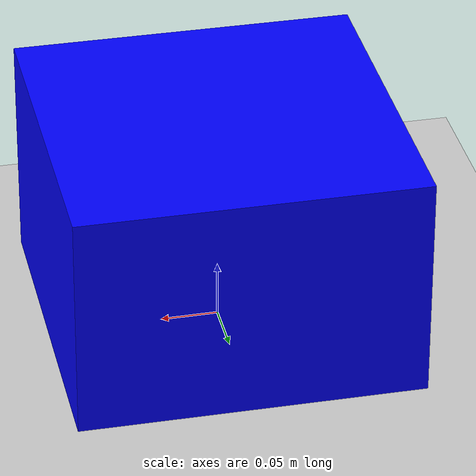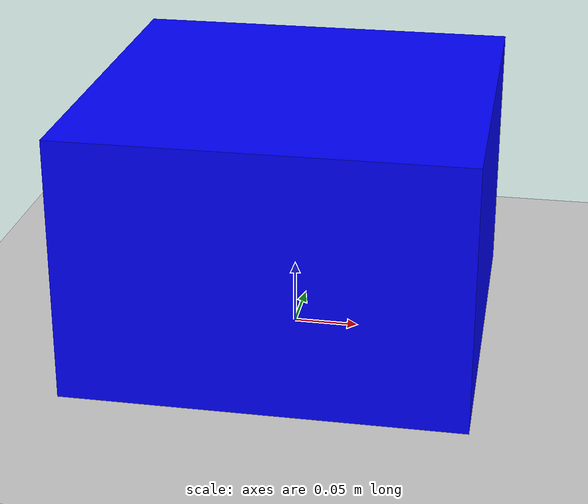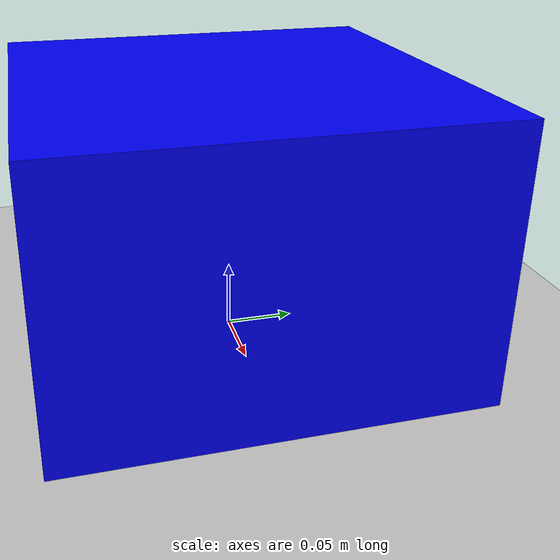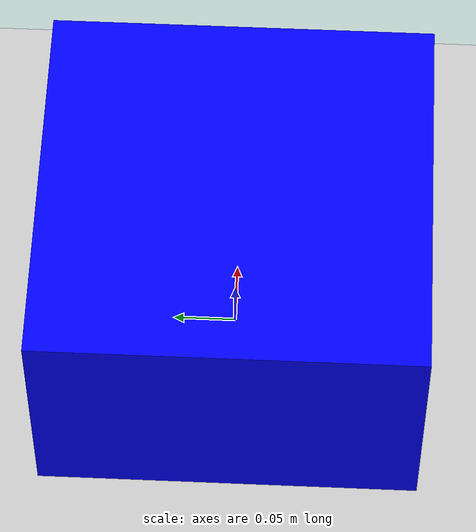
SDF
<sdf version="1.7">
 <world name="default">
  <light name="sun" type="directional">
   <pose>0 0 10 0 -0 0</pose>
   <diffuse>0.8 0.8 0.8 1</diffuse>
   <specular>0.2 0.2 0.2 1</specular>
   <attenuation>
    <range>1000</range>
    <constant>0.9</constant>
    <linear>0.01</linear>
    <quadratic>0.001</quadratic>
   </attenuation>
   <direction>-0.5 0.1 -0.9</direction>
   <spot><inner_angle>0</inner_angle><outer_angle>0</outer_angle><falloff>0</falloff></spot>
  </light>
  <model name="ground_plane">
   <static>1</static>
   <link name="link">
    <collision name="collision">
     <geometry><plane><normal>0 0 1</normal><size>100 100</size></plane></geometry>
     <surface>
      <contact><collide_bitmask>65535</collide_bitmask></contact>
      <friction><ode><mu>100</mu><mu2>50</mu2></ode></friction>
     </surface>
    </collision>
    <visual name="visual">
     <cast_shadows>0</cast_shadows>
     <geometry><plane><normal>0 0 1</normal><size>100 100</size></plane></geometry>
     <material>
      <script><uri>file://media/materials/scripts/gazebo.material</uri><name>Gazebo/Grey</name></script>
     </material>
    </visual>
   </link>
  </model>
  <gravity>0 0 -9.8</gravity>
  <magnetic_field>6e-06 2.3e-05 -4.2e-05</magnetic_field>
  <atmosphere type="adiabatic"/>
  <physics type="ode">
   <max_step_size>0.001</max_step_size>
   <real_time_factor>1</real_time_factor>
   <real_time_update_rate>1000</real_time_update_rate>
  </physics>
  <scene><ambient>0.4 0.4 0.4 1</ambient><background>0.7 0.7 0.7 1</background><shadows>1</shadows></scene>
  <audio><device>default</device></audio>
  <spherical_coordinates>
   <surface_model>EARTH_WGS84</surface_model>
   <latitude_deg>0</latitude_deg>
   <longitude_deg>0</longitude_deg>
   <elevation>0</elevation>
   <heading_deg>0</heading_deg>
  </spherical_coordinates>
  <model name="follower_base">
   <link name="link_f_base">
    <inertial>
     <mass>1</mass>
     <inertia>
      <ixx>0.0108333</ixx>
      <ixy>0</ixy>
      <ixz>0</ixz>
      <iyy>0.0108333</iyy>
      <iyz>0</iyz>
      <izz>0.015</izz>
     </inertia>
    </inertial>
    <pose>0 -0 0.1 0 -0 0</pose>
    <visual name="visual">
     <geometry><box><size>0.3 0.3 0.2</size></box></geometry>
     <material>
      <lighting>1</lighting>
      <script><uri>file://media/materials/scripts/gazebo.material</uri><name>Gazebo/Grey</name></script>
      <shader type="pixel"><normal_map>__default__</normal_map></shader>
      <ambient>0 0 1 0.9</ambient>
      <diffuse>0 0 1 0.9</diffuse>
      <specular>0 0 1 0.9</specular>
      <emissive>0 0 1 0.9</emissive>
     </material>
    </visual>
    <collision name="collision">
     <geometry><box><size>0.3 0.3 0.2</size></box></geometry>
     <surface>
      <friction>
       <ode><mu>0</mu><mu2>0</mu2><fdir1>0 0 0</fdir1><slip1>0</slip1><slip2>0</slip2></ode>
       <torsional>
        <coefficient>1</coefficient>
        <patch_radius>0</patch_radius>
        <surface_radius>0</surface_radius>
        <use_patch_radius>1</use_patch_radius>
        <ode><slip>0</slip></ode>
       </torsional>
      </friction>
      <bounce><restitution_coefficient>0</restitution_coefficient><threshold>1e+06</threshold></bounce>
      <contact>
       <collide_without_contact>0</collide_without_contact>
       <collide_without_contact_bitmask>1</collide_without_contact_bitmask>
       <collide_bitmask>1</collide_bitmask>
       <ode>
        <soft_cfm>0</soft_cfm>
        <soft_erp>0.2</soft_erp>
        <kp>1e+13</kp>
        <kd>1</kd>
        <max_vel>0.01</max_vel>
        <min_depth>0</min_depth>
       </ode>
       <bullet>
        <split_impulse>1</split_impulse>
        <split_impulse_penetration_threshold>-0.01</split_impulse_penetration_threshold>
        <soft_cfm>0</soft_cfm>
        <soft_erp>0.2</soft_erp>
        <kp>1e+13</kp>
        <kd>1</kd>
       </bullet>
      </contact>
     </surface>
    </collision>
   </link>
   <static>0</static>
   <plugin name="follower_force" filename="libgazebo_ros_force.so">
    <ros><namespace>/follower_cf</namespace><remapping>follower_force:=follower_force</remapping></ros>
    <link_name>link_f_base</link_name>
    <force_frame>world</force_frame>
   </plugin>
   <plugin name="follower_odom" filename="libgazebo_ros_p3d.so">
    <ros><namespace>/follower_odom</namespace><remapping>odom:=follower_odom</remapping></ros>
    <body_name>link_f_base</body_name>
    <update_rate>0.0</update_rate>
    <xyz_offset>0 0 -0.25</xyz_offset>
    <rpy_offset>0 0 0</rpy_offset>
    <gaussian_noise>0</gaussian_noise>
   </plugin>
  </model>
 </world>
</sdf>
